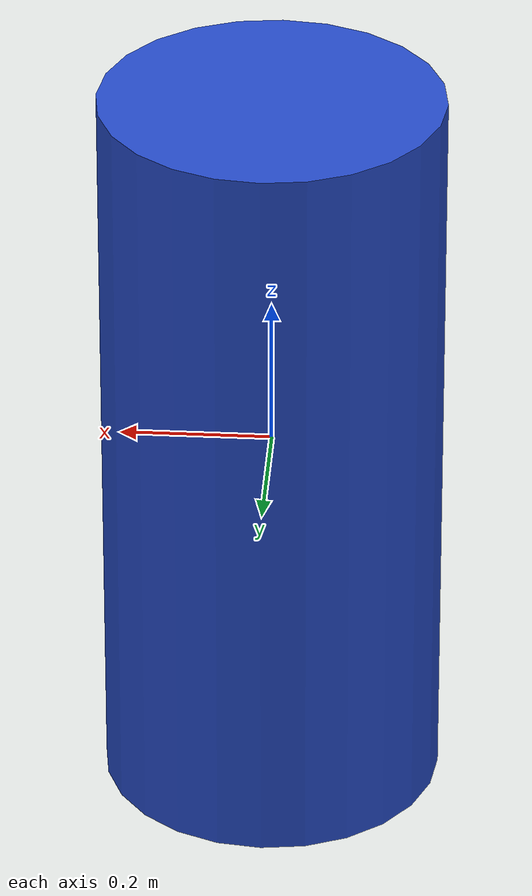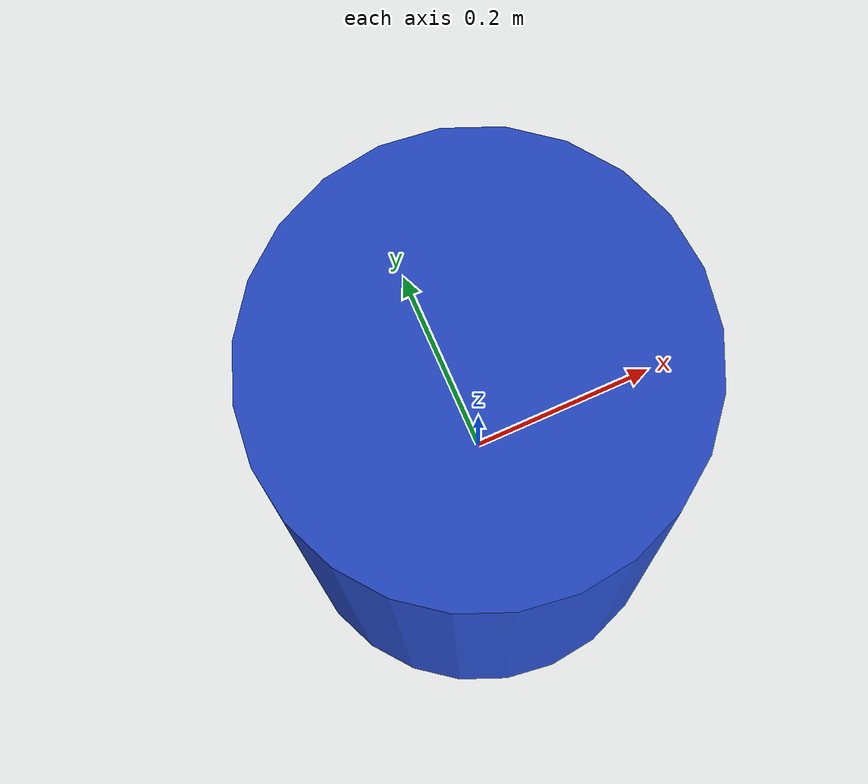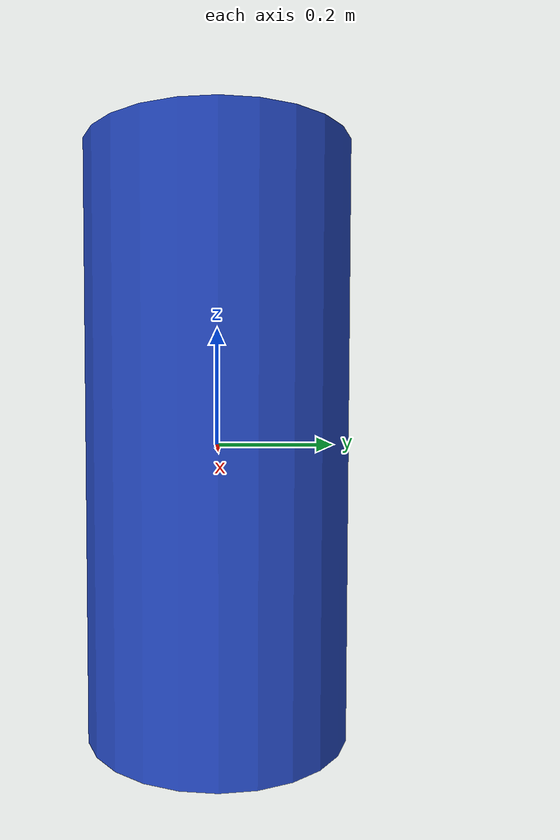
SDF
<?xml version='1.0'?>
<sdf version='1.6'>
  <model name='challenge4_gate'>
    <link name='link'>
      <pose frame=''>0 0 0 0 0 0</pose>
      <inertial>
        <mass>1</mass>
        <inertia>
          <ixx>0.166667</ixx>
          <ixy>0</ixy>
          <ixz>0</ixz>
          <iyy>0.166667</iyy>
          <iyz>0</iyz>
          <izz>0.166667</izz>
        </inertia>
        <pose frame=''>0 0 0 0 -0 0</pose>
      </inertial>
      <self_collide>0</self_collide>
      <kinematic>0</kinematic>
      <gravity>1</gravity>
      <visual name='visual'>
        <geometry>
          <cylinder>
            <radius>0.225</radius>
            <length>1.0</length>
          </cylinder>
        </geometry>
        <material>
          <lighting>1</lighting>
          <script>
            <uri>file://media/materials/scripts/gazebo.material</uri>
            <name>Gazebo/Blue</name>
          </script>
          <shader type='pixel'>
            <normal_map>__default__</normal_map>
          </shader>
          <ambient>0 0 1 1</ambient>
          <diffuse>0 0 1 1</diffuse>
          <specular>0 0 1 1</specular>
          <emissive>0 0 0 1</emissive>
        </material>
        <pose frame=''>0 0 0 0 -0 0</pose>
        <transparency>0</transparency>
        <cast_shadows>1</cast_shadows>
      </visual>
      <collision name='collision'>
        <laser_retro>0</laser_retro>
        <max_contacts>10</max_contacts>
        <pose frame=''>0 0 0 0 -0 0</pose>
        <geometry>
          <cylinder>
            <radius>0.225</radius>
            <length>1.0</length>
          </cylinder>
        </geometry>
      </collision>
    </link>
  </model>
</sdf>
